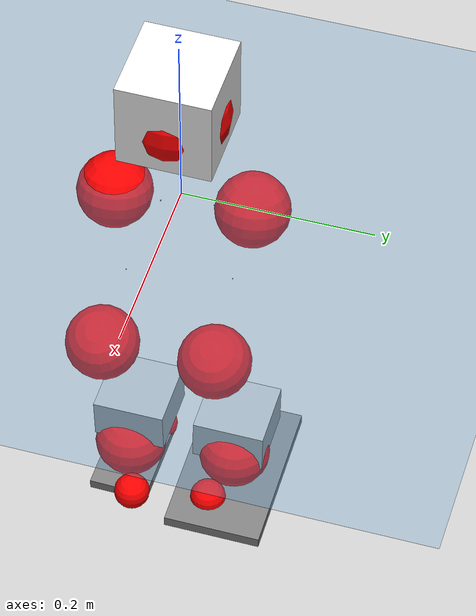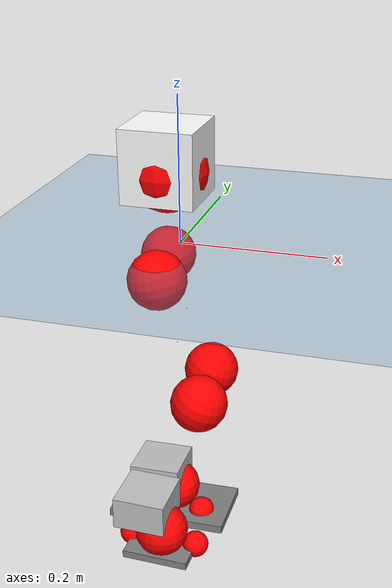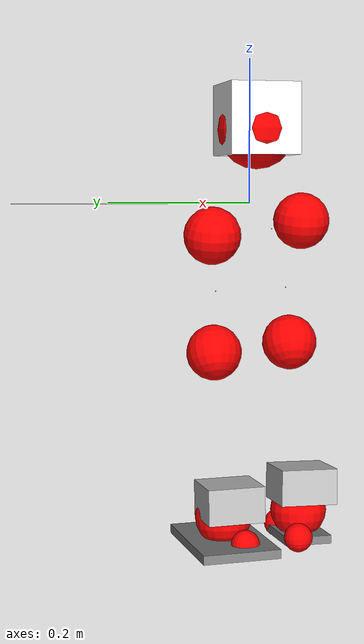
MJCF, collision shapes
<mujoco model="pi_12dof_release_v1">
  <compiler angle="radian" assetdir="assets" balanceinertia="true" inertiafromgeom="false"/>

  <option timestep="0.005" density="1.2" viscosity="2e-05"/>

  <size nkey="1"/>

  <visual>
    <quality shadowsize="8192"/>
    <map shadowclip="0.5"/>
  </visual>

  <default>
    <default class="/">
      <joint armature="0.01" damping="0.01" frictionloss="0.01"/>
      <geom contype="0" conaffinity="0" group="1" solref="-1000 -80"/>
      <site size="0.01 0.005 0.005" group="5"/>
      <general forcelimited="true" biastype="affine" gainprm="20" biasprm="0 -20 -0.5"/>
      <default class="foot">
        <geom size="0.0845 0.036 0.005" type="box" condim="6" group="4" priority="1" friction="0.9 0.2 0.2" solimp="0.015 1 0.005"/>
      </default>
      <default class="reward_collision_sphere">
        <geom group="5" rgba="1 0 0 1"/>
      </default>
    </default>
  </default>

  <asset>
    <texture type="skybox" colorspace="auto" name="//unnamed_texture_0" builtin="gradient" rgb1="0.95 0.95 0.95" rgb2="0.95 0.95 0.95" width="100" height="600"/>
    <texture type="2d" colorspace="auto" name="texplane" builtin="checker" rgb1="0.345 0.575 0.748" rgb2="0.345 0.575 0.748" markrgb="1 1 1" width="512" height="512"/>
    <material name="MatPlane" class="/" texture="texplane" texuniform="true" texrepeat="2 2" specular="0.9"/>
    <mesh name="baselink_1" class="/" file="baselink_1.STL"/>
    <mesh name="r_hip_pitch_link" class="/" file="r_hip_pitch_link.STL"/>
    <mesh name="r_hip_roll_link" class="/" file="r_hip_roll_link.STL"/>
    <mesh name="r_thigh_link" class="/" file="r_thigh_link.STL"/>
    <mesh name="r_calf_link" class="/" file="r_calf_link.STL"/>
    <mesh name="r_ankle_pitch_link" class="/" file="r_ankle_pitch_link.STL"/>
    <mesh name="r_ankle_roll_link" class="/" file="r_ankle_roll_link.STL"/>
    <mesh name="l_hip_pitch_link" class="/" file="l_hip_pitch_link.STL"/>
    <mesh name="l_hip_roll_link" class="/" file="l_hip_roll_link.STL"/>
    <mesh name="l_thigh_link" class="/" file="l_thigh_link.STL"/>
    <mesh name="l_calf_link" class="/" file="l_calf_link.STL"/>
    <mesh name="l_ankle_pitch_link" class="/" file="l_ankle_pitch_link.STL"/>
    <mesh name="l_ankle_roll_link" class="/" file="l_ankle_roll_link.STL"/>
  </asset>

  <worldbody>
    <geom name="floor" class="/" size="100 100 0.125" type="plane" group="0" material="MatPlane"/>
    <light name="toplight_shadow" class="/" pos="0 0 5" dir="0.0990148 0.0990148 -0.990148" type="directional" ambient="0.04 0.04 0.04" diffuse="0.55 0.55 0.55" specular="0.12 0.12 0.12"/>
    <light name="toplight_fill" class="/" pos="0 0 5" dir="0.0990148 0.0990148 -0.990148" type="directional" castshadow="false" ambient="0.04 0.04 0.04" diffuse="0.3 0.3 0.3" specular="0.08 0.08 0.08"/>
    <body name="trunk" pos="-0.0135633 -0.0068192 0.00188204" quat="0.999997 -0.00234371 -7.82756e-05 -0.000326767">
      <inertial pos="0.000475511 0.00176267 0.0578723" quat="0.716151 -0.0176828 0.0247131 0.697283" mass="2.05347" diaginertia="0.00150544 0.00215124 0.0228294"/>
      <joint name="//unnamed_joint_0" type="free"/>
      <geom name="//unnamed_geom_1" class="/" type="mesh" density="0" rgba="1 1 1 1" mesh="baselink_1"/>
      <geom name="//unnamed_geom_2" class="/" size="0.0492076 0.0492076 0.0492076" pos="0 0 0.113308" type="box" rgba="1 1 1 1"/>
      <geom name="//unnamed_geom_3" class="reward_collision_sphere" size="0.0541283" pos="0 0 0.0991442"/>
      <site name="imu" class="/" pos="-0.0260238 0.015397 0.0753782" size="0.00984152"/>
      <camera name="track" class="/" pos="0 -1.59486 0" quat="0.707107 0.707107 0 0" mode="trackcom"/>
      <camera name="ego_camera" class="/" pos="0.055401 0 0.254942" quat="-0.5 -0.5 0.5 0.5"/>
      <body name="r_hip_pitch_link" pos="-0.00272894 -0.0203167 -0.0375572" quat="0.992932 0.00159651 -0.118674 -0.000966936">
        <inertial pos="0.0151642 -0.0370669 3.50327e-05" quat="-0.0203224 0.706352 -0.0282335 0.707006" mass="0.376863" diaginertia="2.547e-05 3.64419e-05 0.000496717"/>
        <joint name="r_hip_pitch_joint" class="/" pos="0 0 0" axis="-0.0419968 -0.998115 0.0447526" stiffness="0.0115814" range="-2.0378 1.04479" armature="0.00944101" damping="0" frictionloss="0.010247"/>
        <geom name="//unnamed_geom_4" class="/" type="mesh" density="0" rgba="0.75294 0.75294 0.75294 1" mesh="r_hip_pitch_link"/>
        <geom name="//unnamed_geom_5" class="/" size="0.000492076 0.000492076 0.000492076" type="box" rgba="0.75294 0.75294 0.75294 1"/>
        <body name="r_hip_roll_link" pos="0.0101416 -0.0458109 0.00871534" quat="0.999993 0.00170724 0.0026378 -0.00190761">
          <inertial pos="0.00066934 -0.00237466 -0.0705507" quat="0.728304 -0.0604979 -0.0649931 0.679477" mass="0.391881" diaginertia="7.83478e-05 9.61656e-05 0.000796543"/>
          <joint name="r_hip_roll_joint" class="/" pos="0 0 0" axis="-0.998034 -0.0351991 -0.0518507" stiffness="0.0104559" range="-0.173744 0.230181" armature="0.00582466" damping="0.0430319" frictionloss="0.0152623"/>
          <geom name="//unnamed_geom_6" class="/" type="mesh" density="0" rgba="0.75294 0.75294 0.75294 1" mesh="r_hip_roll_link"/>
          <geom name="//unnamed_geom_7" class="/" size="0.000492076 0.000492076 0.000492076" type="box" rgba="0.75294 0.75294 0.75294 1"/>
          <geom name="//unnamed_geom_8" class="reward_collision_sphere" size="0.0393661"/>
          <body name="r_thigh_link" pos="-0.00212833 0.0160072 -0.0966233" quat="0.999985 0.00309432 0.00446648 -0.000236948">
            <inertial pos="-0.00794857 0.00549631 -0.067781" quat="0.725293 0.684809 -0.0304799 0.0636986" mass="0.0834138" diaginertia="2.77001e-05 2.70091e-05 0.000337123"/>
            <joint name="r_thigh_joint" class="/" pos="0 0 0" axis="0.0452585 -0.00738322 -0.998948" stiffness="0.0756175" range="-0.519594 0.295513" armature="0.00979749" damping="0" frictionloss="0.0136693"/>
            <geom name="//unnamed_geom_9" class="/" type="mesh" density="0" rgba="0.75294 0.75294 0.75294 1" mesh="r_thigh_link"/>
            <geom name="//unnamed_geom_10" class="/" size="0.000492076 0.000492076 0.000492076" type="box" rgba="0.75294 0.75294 0.75294 1"/>
            <body name="r_calf_link" pos="0.0157048 -0.0173887 -0.0871839" quat="0.94774 0.000606852 0.319043 -0.000214629">
              <inertial pos="-0.015527 -0.00609549 -0.0846452" quat="0.999094 0.0297451 -0.00616981 -0.0298114" mass="0.606899" diaginertia="0.000643811 0.00103675 0.000806401"/>
              <joint name="r_calf_joint" class="/" pos="0 0 0" axis="0.0325202 -0.997421 0.0639827" stiffness="0.0402696" range="-1.61085 0.643242" armature="0.00613326" damping="0.0229494" frictionloss="0.0115729"/>
              <geom name="//unnamed_geom_11" class="/" type="mesh" density="0" rgba="0.75294 0.75294 0.75294 1" mesh="r_calf_link"/>
              <geom name="//unnamed_geom_12" class="/" size="0.000492076 0.000492076 0.000492076" type="box" rgba="0.75294 0.75294 0.75294 1"/>
              <geom name="//unnamed_geom_13" class="reward_collision_sphere" size="0.0393661"/>
              <body name="r_ankle_pitch_link" pos="0.00068316 0.00656303 -0.207616" quat="0.980062 -0.000129802 -0.198693 -6.1532e-05">
                <inertial pos="0.0118509 -0.0137179 -0.00516383" quat="0.00215407 0.707154 0.00185076 0.707054" mass="0.155133" diaginertia="6.62666e-05 6.3267e-05 0.00062617"/>
                <joint name="r_ankle_pitch_joint" class="/" pos="0 0 0" axis="0.0459838 -0.998703 0.0218557" range="-1.44548 0.503843" armature="0.0154773" damping="0" frictionloss="0.0152081"/>
                <geom name="//unnamed_geom_14" class="/" type="mesh" density="0" rgba="0.75294 0.75294 0.75294 1" mesh="r_ankle_pitch_link"/>
                <geom name="//unnamed_geom_15" class="/" size="0.0383819 0.0393661 0.0246038" type="box" rgba="0.75294 0.75294 0.75294 1"/>
                <body name="r_ankle_roll_link" pos="0.0604564 -0.00327143 -0.0127961" quat="0.99997 -0.00564202 -0.00293557 -0.00436404">
                  <inertial pos="-0.0342237 0.0102691 -0.0330803" quat="0.553362 0.446245 0.437003 0.551076" mass="0.596471" diaginertia="0.000232145 0.000290191 0.0013567"/>
                  <joint name="r_ankle_roll_joint" class="/" pos="0 0 0" axis="-0.996991 0.0767789 -0.0107193" stiffness="0.0478067" range="-0.154437 0.218071" armature="0.0074572" damping="0" frictionloss="0.0115054"/>
                  <geom name="//unnamed_geom_16" class="/" type="mesh" density="0" rgba="0.75294 0.75294 0.75294 1" mesh="r_ankle_roll_link"/>
                  <geom name="//unnamed_geom_17" class="/" type="mesh" rgba="0.75294 0.75294 0.75294 1" mesh="r_ankle_roll_link"/>
                  <geom name="right_foot" class="foot" size="0.049294 0.0324481 0.00568088" pos="-0.0376727 0 -0.0623192"/>
                  <geom name="//unnamed_geom_19" class="reward_collision_sphere" size="0.0393661" pos="-0.036934 0 -0.0283269"/>
                  <geom name="//unnamed_geom_20" class="reward_collision_sphere" size="0.019683" pos="0.0110802 0.0159486 -0.0566538"/>
                  <geom name="//unnamed_geom_21" class="reward_collision_sphere" size="0.019683" pos="-0.0886415 0.0159486 -0.0566538"/>
                  <site name="right_foot" class="foot" pos="-0.0376727 0 -0.0623192" size="0.00984152"/>
                </body>
              </body>
            </body>
          </body>
        </body>
      </body>
      <body name="l_hip_pitch_link" pos="-0.0169092 0.0319033 -0.0427699" quat="0.99228 0.0012552 -0.123992 0.0023216">
        <inertial pos="-0.0140716 0.0596934 6.80396e-05" quat="-0.0376706 0.659916 0.0109776 0.750315" mass="0.40717" diaginertia="2.99087e-05 3.41011e-05 0.000664155"/>
        <joint name="l_hip_pitch_joint" class="/" pos="0 0 0" axis="-0.0100965 0.996622 0.0815029" stiffness="0.0685398" range="-0.963704 1.69214" armature="0.0167565" damping="0" frictionloss="0.00586498"/>
        <geom name="//unnamed_geom_22" class="/" type="mesh" density="0" rgba="0.75294 0.75294 0.75294 1" mesh="l_hip_pitch_link"/>
        <geom name="//unnamed_geom_23" class="/" size="0.000492076 0.000492076 0.000492076" type="box" rgba="0.75294 0.75294 0.75294 1"/>
        <body name="l_hip_roll_link" pos="-0.00879471 0.0385647 -0.000848627" quat="0.999995 -0.00156715 0.00116996 0.00262628">
          <inertial pos="-0.00579796 -0.0148312 -0.0876713" quat="0.692727 -0.0272058 -0.0478617 0.719095" mass="0.302213" diaginertia="7.14292e-05 7.55986e-05 0.00075763"/>
          <joint name="l_hip_roll_joint" class="/" pos="0 0 0" axis="-0.999077 -0.0151955 -0.0401676" stiffness="0.0483387" range="-0.443323 -0.0454135" armature="0.00309946" damping="0.0486033" frictionloss="0.0143403"/>
          <geom name="//unnamed_geom_24" class="/" type="mesh" density="0" rgba="0.75294 0.75294 0.75294 1" mesh="l_hip_roll_link"/>
          <geom name="//unnamed_geom_25" class="/" size="0.000492076 0.000492076 0.000492076" type="box" rgba="0.75294 0.75294 0.75294 1"/>
          <geom name="//unnamed_geom_26" class="reward_collision_sphere" size="0.0393661"/>
          <body name="l_thigh_link" pos="0.00982492 -0.0123128 -0.0823658" quat="0.999968 -0.00172736 -0.00620603 0.00467115">
            <inertial pos="-0.00236914 -2.4416e-05 -0.0840998" quat="0.685345 0.727043 -0.00997886 -0.0401516" mass="0.12642" diaginertia="2.77963e-05 3.35001e-05 0.000327375"/>
            <joint name="l_thigh_joint" class="/" pos="0 0 0" axis="-0.0103212 -0.0289346 -0.999528" range="-0.307962 0.334566" armature="0.00924768" damping="0.0575062" frictionloss="0.00868255"/>
            <geom name="//unnamed_geom_27" class="/" type="mesh" density="0" rgba="0.75294 0.75294 0.75294 1" mesh="l_thigh_link"/>
            <geom name="//unnamed_geom_28" class="/" size="0.000492076 0.000492076 0.000492076" type="box" rgba="0.75294 0.75294 0.75294 1"/>
            <body name="l_calf_link" pos="0.014791 -0.00722687 -0.096847" quat="0.947899 -0.00302131 0.318557 0.000433202">
              <inertial pos="-0.0109003 -0.00554056 -0.100241" quat="0.996883 0.0246271 -0.0466588 0.0586503" mass="0.820905" diaginertia="0.000718271 0.00103223 0.000914959"/>
              <joint name="l_calf_joint" class="/" pos="0 0 0" axis="-0.0450216 0.997778 -0.0491185" range="-0.863182 1.51532" armature="0.0105739" damping="0" frictionloss="0.0160478"/>
              <geom name="//unnamed_geom_29" class="/" type="mesh" density="0" rgba="0.75294 0.75294 0.75294 1" mesh="l_calf_link"/>
              <geom name="//unnamed_geom_30" class="/" size="0.000492076 0.000492076 0.000492076" type="box" rgba="0.75294 0.75294 0.75294 1"/>
              <geom name="//unnamed_geom_31" class="reward_collision_sphere" size="0.0393661"/>
              <body name="l_ankle_pitch_link" pos="-0.00262215 0.00499028 -0.211811" quat="0.98061 0.000928587 -0.19596 -0.0015857">
                <inertial pos="-0.0014609 0.000961605 -0.00561575" quat="0.0540772 0.720851 0.0547662 0.688804" mass="0.177223" diaginertia="6.85123e-05 6.01787e-05 0.000543031"/>
                <joint name="l_ankle_pitch_joint" class="/" pos="0 0 0" axis="-0.0295476 0.999519 -0.00940882" range="-0.71303 1.10315" armature="0.0127222" damping="0.0593828" frictionloss="0.00788304"/>
                <geom name="//unnamed_geom_32" class="/" type="mesh" density="0" rgba="0.75294 0.75294 0.75294 1" mesh="l_ankle_pitch_link"/>
                <geom name="//unnamed_geom_33" class="/" size="0.0383819 0.0393661 0.0246038" type="box" rgba="0.75294 0.75294 0.75294 1"/>
                <body name="l_ankle_roll_link" pos="0.0573726 0.00321634 0.00225823" quat="1 5.81972e-05 4.11922e-05 -5.33171e-05">
                  <inertial pos="-0.00422066 0.0156306 -0.0351172" quat="0.557827 0.427406 0.431392 0.565733" mass="0.428122" diaginertia="0.000289358 0.00028663 0.00167666"/>
                  <joint name="l_ankle_roll_joint" class="/" pos="0 0 0" axis="-0.999606 -0.0158854 -0.0231315" range="-0.245177 0.348701" armature="0.00815721" damping="0" frictionloss="0.00327872"/>
                  <geom name="//unnamed_geom_34" class="/" type="mesh" density="0" rgba="0.75294 0.75294 0.75294 1" mesh="l_ankle_roll_link"/>
                  <geom name="//unnamed_geom_35" class="/" type="mesh" rgba="0.75294 0.75294 0.75294 1" mesh="l_ankle_roll_link"/>
                  <geom name="left_foot" class="foot" size="0.0912682 0.0534369 0.00611725" pos="-0.0376727 0 -0.0623192"/>
                  <geom name="//unnamed_geom_37" class="reward_collision_sphere" size="0.0393661" pos="-0.036934 0 -0.0283269"/>
                  <geom name="//unnamed_geom_38" class="reward_collision_sphere" size="0.019683" pos="0.0110802 -0.0159486 -0.0566538"/>
                  <geom name="//unnamed_geom_39" class="reward_collision_sphere" size="0.019683" pos="-0.0886415 -0.0159486 -0.0566538"/>
                  <site name="left_foot" class="foot" pos="-0.0376727 0 -0.0623192" size="0.00984152"/>
                </body>
              </body>
            </body>
          </body>
        </body>
      </body>
    </body>
  </worldbody>

  <contact>
    <pair class="/" geom1="floor" geom2="right_foot" name="//unnamed_contact_1"/>
    <pair class="/" geom1="floor" geom2="left_foot" name="//unnamed_contact_0"/>
  </contact>

  <actuator>
    <general name="r_hip_pitch_joint" class="/" joint="r_hip_pitch_joint" forcerange="-14.8412 14.8412" gainprm="18.4871" biasprm="0 -18.4871 -0.523751"/>
    <general name="r_hip_roll_joint" class="/" joint="r_hip_roll_joint" forcerange="-9.84338 9.84338" gainprm="18.4871" biasprm="0 -18.4871 -0.523751"/>
    <general name="r_thigh_joint" class="/" joint="r_thigh_joint" forcerange="-25.9576 25.9576" gainprm="18.4871" biasprm="0 -18.4871 -0.523751"/>
    <general name="r_calf_joint" class="/" joint="r_calf_joint" forcerange="-8.79486 8.79486" gainprm="18.4871" biasprm="0 -18.4871 -0.523751"/>
    <general name="r_ankle_pitch_joint" class="/" joint="r_ankle_pitch_joint" forcerange="-24.5452 24.5452" gainprm="18.4871" biasprm="0 -18.4871 -0.523751"/>
    <general name="r_ankle_roll_joint" class="/" joint="r_ankle_roll_joint" forcerange="-16.2617 16.2617" gainprm="18.4871" biasprm="0 -18.4871 -0.523751"/>
    <general name="l_hip_pitch_joint" class="/" joint="l_hip_pitch_joint" forcerange="-21.7904 21.7904" gainprm="18.4871" biasprm="0 -18.4871 -0.523751"/>
    <general name="l_hip_roll_joint" class="/" joint="l_hip_roll_joint" forcerange="-30.4873 30.4873" gainprm="18.4871" biasprm="0 -18.4871 -0.523751"/>
    <general name="l_thigh_joint" class="/" joint="l_thigh_joint" forcerange="-15.0262 15.0262" gainprm="18.4871" biasprm="0 -18.4871 -0.523751"/>
    <general name="l_calf_joint" class="/" joint="l_calf_joint" forcerange="-21.4265 21.4265" gainprm="18.4871" biasprm="0 -18.4871 -0.523751"/>
    <general name="l_ankle_pitch_joint" class="/" joint="l_ankle_pitch_joint" forcerange="-18.4675 18.4675" gainprm="18.4871" biasprm="0 -18.4871 -0.523751"/>
    <general name="l_ankle_roll_joint" class="/" joint="l_ankle_roll_joint" forcerange="-13.3842 13.3842" gainprm="18.4871" biasprm="0 -18.4871 -0.523751"/>
  </actuator>

  <sensor>
    <gyro site="imu" name="imu_angular_velocity"/>
    <velocimeter site="imu" name="imu_linear_velocity"/>
    <framelinvel objtype="site" objname="left_foot" name="left_foot_global_linear_velocity"/>
    <framelinvel objtype="site" objname="right_foot" name="right_foot_global_linear_velocity"/>
  </sensor>

  <keyframe>
    <key name="home" qpos="0 0 0.291 1 0 0 0 0.4 0 0 -0.8 0.4 0 -0.4 0 0 0.8 -0.4 0"/>
  </keyframe>
</mujoco>
